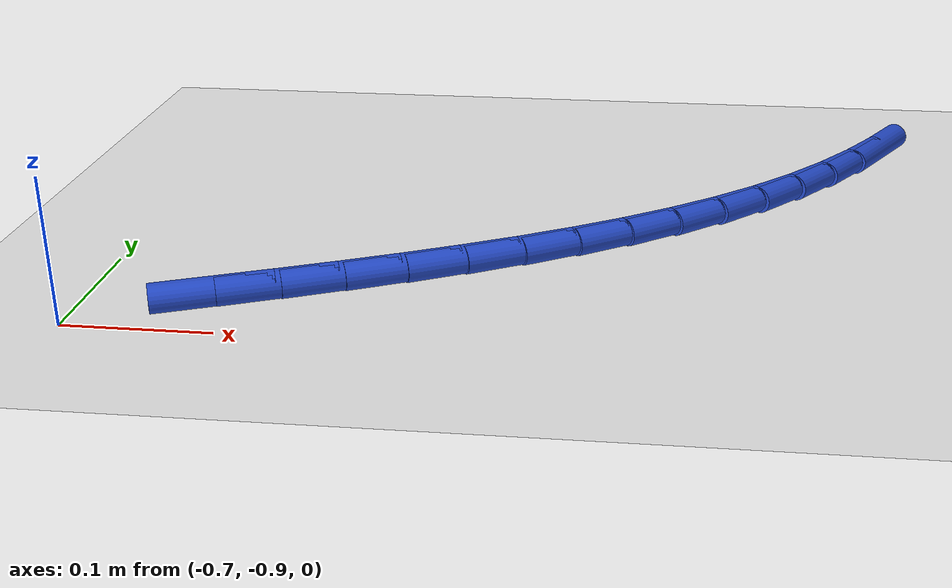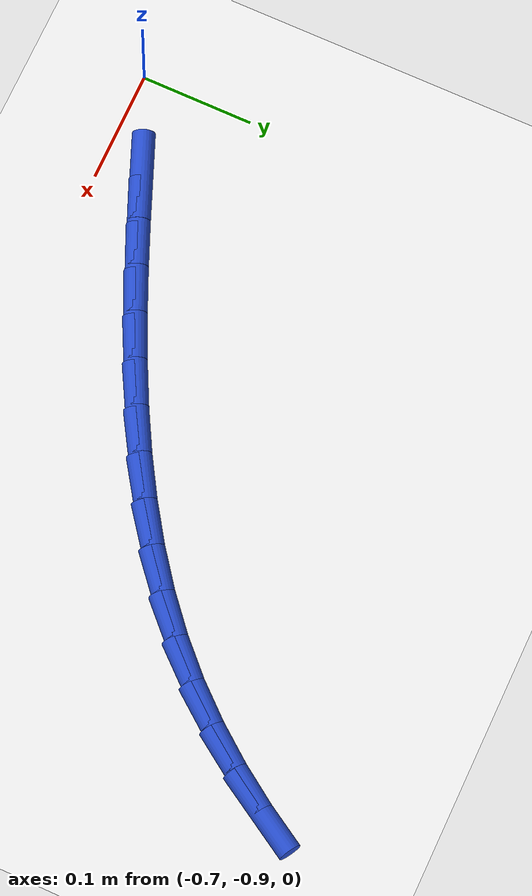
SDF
<sdf version="1.6">
 <world name="default">
  <model name="ground_plane">
   <static>1</static>
   <link name="link">
    <collision name="collision">
     <geometry><plane><normal>0 0 1</normal><size>100 100</size></plane></geometry>
     <surface><friction><ode><mu>100</mu><mu2>50</mu2></ode></friction></surface>
    </collision>
    <visual name="visual">
     <cast_shadows>0</cast_shadows>
     <geometry><plane><normal>0 0 1</normal><size>100 100</size></plane></geometry>
     <material>
      <script><uri>file://media/materials/scripts/gazebo.material</uri><name>Gazebo/WhiteGlow</name></script>
     </material>
    </visual>
   </link>
  </model>
  <model name="line">
   <link name="link_152">
    <pose>-0.6124365680506549 -0.8618558134166517 0.01 0 1.57 0.3818864654607552</pose>
    <collision name="collision">
     <geometry><cylinder><radius>0.01</radius><length>0.08</length></cylinder></geometry>
    </collision>
    <visual name="visual">
     <material>
      <script><name>Gazebo/Blue</name><uri>file://media/materials/scripts/gazebo.material</uri></script>
     </material>
     <geometry><cylinder><radius>0.01</radius><length>0.08</length></cylinder></geometry>
    </visual>
   </link>
   <link name="link_153">
    <pose>-0.5738553399478903 -0.8463615232372024 0.01 0 1.57 0.3943880005747152</pose>
    <collision name="collision">
     <geometry><cylinder><radius>0.01</radius><length>0.08</length></cylinder></geometry>
    </collision>
    <visual name="visual">
     <material>
      <script><name>Gazebo/Blue</name><uri>file://media/materials/scripts/gazebo.material</uri></script>
     </material>
     <geometry><cylinder><radius>0.01</radius><length>0.08</length></cylinder></geometry>
    </visual>
   </link>
   <link name="link_154">
    <pose>-0.5354832007818017 -0.8303912829243578 0.01 0 1.57 0.4122806061673717</pose>
    <collision name="collision">
     <geometry><cylinder><radius>0.01</radius><length>0.08</length></cylinder></geometry>
    </collision>
    <visual name="visual">
     <material>
      <script><name>Gazebo/Blue</name><uri>file://media/materials/scripts/gazebo.material</uri></script>
     </material>
     <geometry><cylinder><radius>0.01</radius><length>0.08</length></cylinder></geometry>
    </visual>
   </link>
   <link name="link_155">
    <pose>-0.49750038889746506 -0.8137796778287225 0.01 0 1.57 0.43572402559502377</pose>
    <collision name="collision">
     <geometry><cylinder><radius>0.01</radius><length>0.08</length></cylinder></geometry>
    </collision>
    <visual name="visual">
     <material>
      <script><name>Gazebo/Blue</name><uri>file://media/materials/scripts/gazebo.material</uri></script>
     </material>
     <geometry><cylinder><radius>0.01</radius><length>0.08</length></cylinder></geometry>
    </visual>
   </link>
   <link name="link_156">
    <pose>-0.46008714263995343 -0.7963612933009 0.01 0 1.57 0.46493105998692436</pose>
    <collision name="collision">
     <geometry><cylinder><radius>0.01</radius><length>0.08</length></cylinder></geometry>
    </collision>
    <visual name="visual">
     <material>
      <script><name>Gazebo/Blue</name><uri>file://media/materials/scripts/gazebo.material</uri></script>
     </material>
     <geometry><cylinder><radius>0.01</radius><length>0.08</length></cylinder></geometry>
    </visual>
   </link>
   <link name="link_157">
    <pose>-0.4234237003543408 -0.7779707146914944 0.01 0 1.57 0.5001496058825518</pose>
    <collision name="collision">
     <geometry><cylinder><radius>0.01</radius><length>0.08</length></cylinder></geometry>
    </collision>
    <visual name="visual">
     <material>
      <script><name>Gazebo/Blue</name><uri>file://media/materials/scripts/gazebo.material</uri></script>
     </material>
     <geometry><cylinder><radius>0.01</radius><length>0.08</length></cylinder></geometry>
    </visual>
   </link>
   <link name="link_158">
    <pose>-0.3876903003857014 -0.7584425273511092 0.01 0 1.57 0.5416363267256129</pose>
    <collision name="collision">
     <geometry><cylinder><radius>0.01</radius><length>0.08</length></cylinder></geometry>
    </collision>
    <visual name="visual">
     <material>
      <script><name>Gazebo/Blue</name><uri>file://media/materials/scripts/gazebo.material</uri></script>
     </material>
     <geometry><cylinder><radius>0.01</radius><length>0.08</length></cylinder></geometry>
    </visual>
   </link>
   <link name="link_159">
    <pose>-0.35306718107910845 -0.7376113166303483 0.01 0 1.57 0.5896191328668715</pose>
    <collision name="collision">
     <geometry><cylinder><radius>0.01</radius><length>0.08</length></cylinder></geometry>
    </collision>
    <visual name="visual">
     <material>
      <script><name>Gazebo/Blue</name><uri>file://media/materials/scripts/gazebo.material</uri></script>
     </material>
     <geometry><cylinder><radius>0.01</radius><length>0.08</length></cylinder></geometry>
    </visual>
   </link>
   <link name="link_160">
    <pose>-0.31973458077963735 -0.715311667879816 0.01 0 1.57 0.6442462954040998</pose>
    <collision name="collision">
     <geometry><cylinder><radius>0.01</radius><length>0.08</length></cylinder></geometry>
    </collision>
    <visual name="visual">
     <material>
      <script><name>Gazebo/Blue</name><uri>file://media/materials/scripts/gazebo.material</uri></script>
     </material>
     <geometry><cylinder><radius>0.01</radius><length>0.08</length></cylinder></geometry>
    </visual>
   </link>
   <link name="link_161">
    <pose>-0.2878727378323615 -0.6913781664501166 0.01 0 1.57 0.7055221896667985</pose>
    <collision name="collision">
     <geometry><cylinder><radius>0.01</radius><length>0.08</length></cylinder></geometry>
    </collision>
    <visual name="visual">
     <material>
      <script><name>Gazebo/Blue</name><uri>file://media/materials/scripts/gazebo.material</uri></script>
     </material>
     <geometry><cylinder><radius>0.01</radius><length>0.08</length></cylinder></geometry>
    </visual>
   </link>
   <link name="link_162">
    <pose>-0.25766189058235495 -0.665645397691853 0.01 0 1.57 0.7732250650043379</pose>
    <collision name="collision">
     <geometry><cylinder><radius>0.01</radius><length>0.08</length></cylinder></geometry>
    </collision>
    <visual name="visual">
     <material>
      <script><name>Gazebo/Blue</name><uri>file://media/materials/scripts/gazebo.material</uri></script>
     </material>
     <geometry><cylinder><radius>0.01</radius><length>0.08</length></cylinder></geometry>
    </visual>
   </link>
   <link name="link_163">
    <pose>-0.22928206585118355 -0.6379482373380958 0.01 0 1.57 0.8439925468508557</pose>
    <collision name="collision">
     <geometry><cylinder><radius>0.01</radius><length>0.08</length></cylinder></geometry>
    </collision>
    <visual name="visual">
     <material>
      <script><name>Gazebo/Blue</name><uri>file://media/materials/scripts/gazebo.material</uri></script>
     </material>
     <geometry><cylinder><radius>0.01</radius><length>0.08</length></cylinder></geometry>
    </visual>
   </link>
   <link name="link_164">
    <pose>-0.20284464167017274 -0.6082158031528219 0.01 0 1.57 0.9104339046372597</pose>
    <collision name="collision">
     <geometry><cylinder><radius>0.01</radius><length>0.08</length></cylinder></geometry>
    </collision>
    <visual name="visual">
     <material>
      <script><name>Gazebo/Blue</name><uri>file://media/materials/scripts/gazebo.material</uri></script>
     </material>
     <geometry><cylinder><radius>0.01</radius><length>0.08</length></cylinder></geometry>
    </visual>
   </link>
   <link name="link_165">
    <pose>-0.17829405784298583 -0.5766063880618117 0.01 0 1.57 0.9714802658431673</pose>
    <collision name="collision">
     <geometry><cylinder><radius>0.01</radius><length>0.08</length></cylinder></geometry>
    </collision>
    <visual name="visual">
     <material>
      <script><name>Gazebo/Blue</name><uri>file://media/materials/scripts/gazebo.material</uri></script>
     </material>
     <geometry><cylinder><radius>0.01</radius><length>0.08</length></cylinder></geometry>
    </visual>
   </link>
   <link name="link_166">
    <pose>-0.15554986485762456 -0.5433124533956758 0.01 0 1.57 1.0272826303792946</pose>
    <collision name="collision">
     <geometry><cylinder><radius>0.01</radius><length>0.08</length></cylinder></geometry>
    </collision>
    <visual name="visual">
     <material>
      <script><name>Gazebo/Blue</name><uri>file://media/materials/scripts/gazebo.material</uri></script>
     </material>
     <geometry><cylinder><radius>0.01</radius><length>0.08</length></cylinder></geometry>
    </visual>
   </link>
  </model>
 </world>
</sdf>
